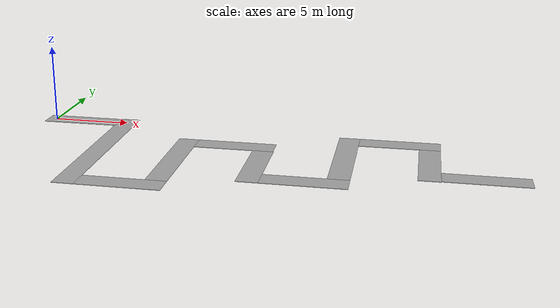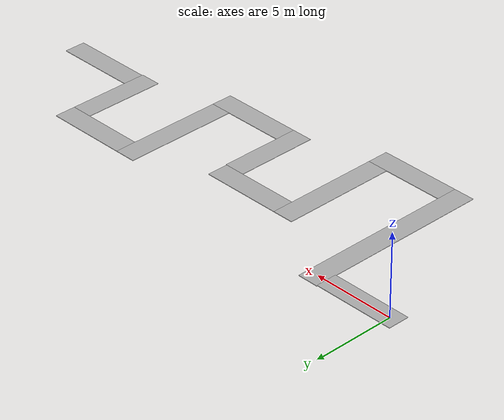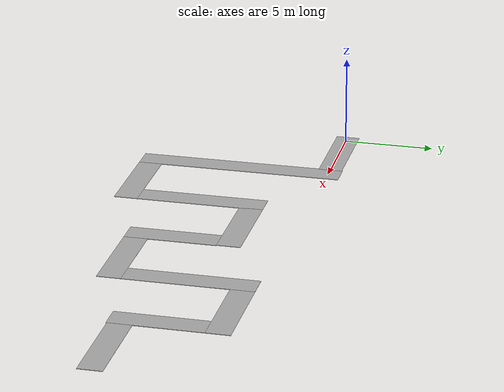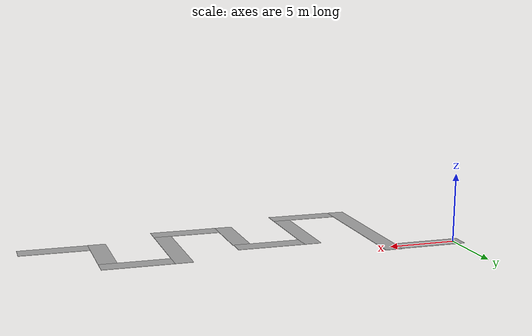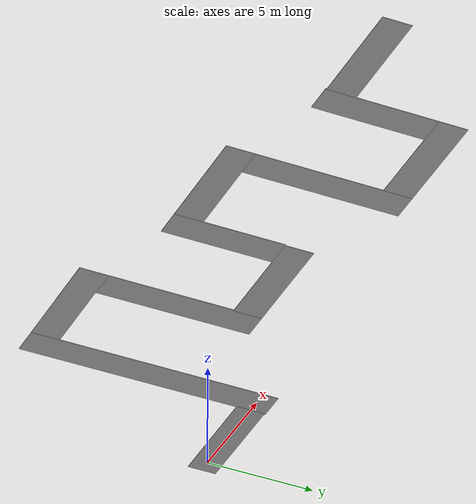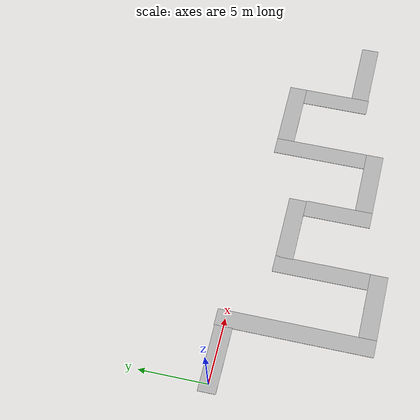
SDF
<?xml version="1.0" ?>
<sdf version="1.5">
  <model name="cgrounds">

    <include>
      <name>g1</name>
      <pose>1.9 0.0 0.0 0 0 0</pose>
      <uri>model://aisle_5m</uri>
    </include>
    <include>
      <name>g2</name>
      <pose>8.15 -10.05 0.0 0 0 0</pose>
      <uri>model://aisle_5m</uri>
    </include>
    <include>
      <name>g3</name>
      <pose>13.1 -3.05 0.0 0 0 0</pose>
      <uri>model://aisle_5m</uri>
    </include>
    <include>
      <name>g4</name>
      <pose>18.15 -8.05 0.0 0 0 0</pose>
      <uri>model://aisle_5m</uri>
    </include>
    <include>
      <name>g5</name>
      <pose>23.15 -1.05 0.0 0 0 0</pose>
      <uri>model://aisle_5m</uri>
    </include>
    <include>
      <name>g6</name>
      <pose>28.15 -6.0 0.0 0 0 0</pose>
      <uri>model://aisle_5m</uri>
    </include>

    <include>
      <name>v1</name>
      <pose>5 -5.0 0.0 0 0 1.5708</pose>
      <uri>model://aisle_11m</uri>
    </include>
    <include>
      <name>v2</name>
      <pose>10 -5.9 0.0 0 0 1.5708</pose>
      <uri>model://aisle_7m</uri>
    </include>
    <include>
      <name>v3</name>
      <pose>20 -3.9 0.0 0 0 1.5708</pose>
      <uri>model://aisle_7m</uri>
    </include>
    <include>
      <name>v4</name>
      <pose>15.0 -6.2 0.0 0 0 1.5708</pose>
      <uri>model://aisle_5m</uri>
    </include>
    <include>
      <name>v5</name>
      <pose>25.0 -4.2 0.0 0 0 1.5708</pose>
      <uri>model://aisle_5m</uri>
    </include>

  </model>
</sdf>

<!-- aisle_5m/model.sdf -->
<sdf version="1.5">
  <model name="aisle_5m">
    <static>true</static>
    <link name="link">
      <pose>0 0 0.01 0 0 0</pose>
      <collision name="aisle_5mC">
        <geometry>
          <box>
            <size>5.0 1.3 0.03</size>
          </box>
        </geometry>
      </collision>
      <visual name="visual">
        <cast_shadows>false</cast_shadows>
        <geometry>
          <box>
            <size>5.0 1.3 0.03</size>
          </box>
        </geometry>
        <material>
          <script>
            <uri>model://aisle_5m/materials/scripts</uri>
            <uri>model://aisle_5m/materials/textures</uri>
            <name>vrc/aisle_5m</name>
          </script>
        </material>
      </visual>
    </link>
  </model>
</sdf>

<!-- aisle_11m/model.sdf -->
<sdf version="1.5">
  <model name="aisle_11m">
    <static>true</static>
    <link name="link">
      <pose>0 0 0.01 0 0 0</pose>
      <collision name="aisle_11mC">
        <geometry>
          <box>
            <size>11.4 1.3 0.03</size>
          </box>
        </geometry>
      </collision>
      <visual name="visual">
        <cast_shadows>false</cast_shadows>
        <geometry>
          <box>
            <size>11.4 1.3 0.03</size>
          </box>
        </geometry>
        <material>
          <script>
            <uri>model://aisle_11m/materials/scripts</uri>
            <uri>model://aisle_11m/materials/textures</uri>
            <name>vrc/aisle_11m</name>
          </script>
        </material>
      </visual>
    </link>
  </model>
</sdf>

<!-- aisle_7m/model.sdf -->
<sdf version="1.5">
  <model name="aisle_7m">
    <static>true</static>
    <link name="link">
      <pose>0 0 0.01 0 0 0</pose>
      <collision name="aisle_7mC">
        <geometry>
          <box>
            <size>7.0 1.3 0.03</size>
          </box>
        </geometry>
      </collision>
      <visual name="visual">
        <cast_shadows>false</cast_shadows>
        <geometry>
          <box>
            <size>7.0 1.3 0.03</size>
          </box>
        </geometry>
        <material>
          <script>
            <uri>model://aisle_7m/materials/scripts</uri>
            <uri>model://aisle_7m/materials/textures</uri>
            <name>vrc/aisle_7m</name>
          </script>
        </material>
      </visual>
    </link>
  </model>
</sdf>
